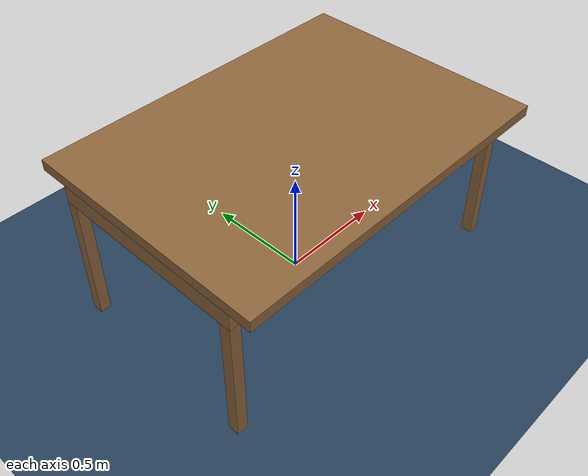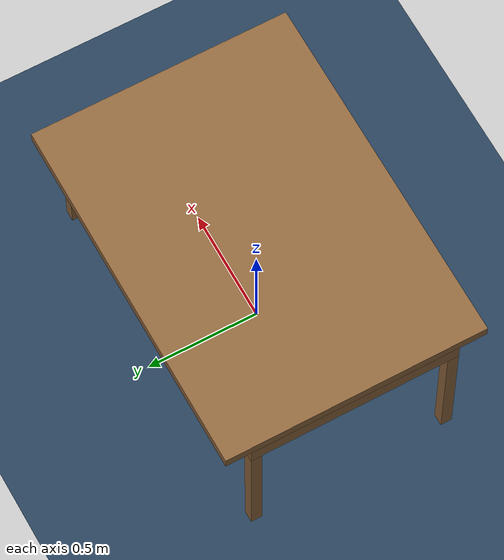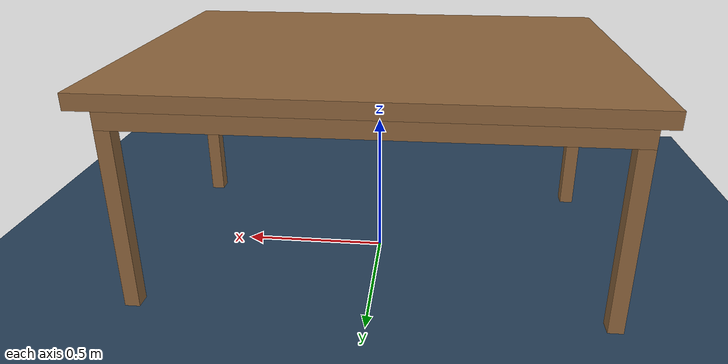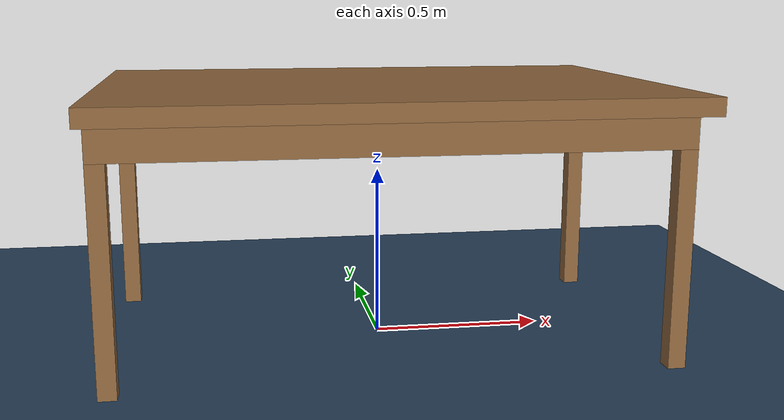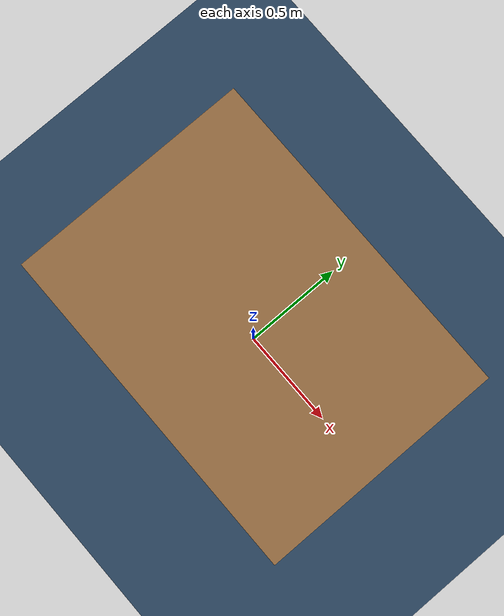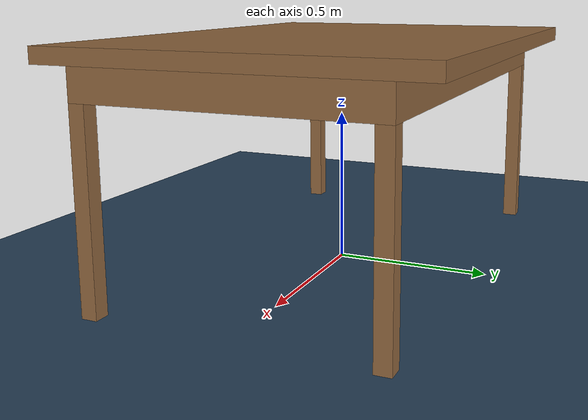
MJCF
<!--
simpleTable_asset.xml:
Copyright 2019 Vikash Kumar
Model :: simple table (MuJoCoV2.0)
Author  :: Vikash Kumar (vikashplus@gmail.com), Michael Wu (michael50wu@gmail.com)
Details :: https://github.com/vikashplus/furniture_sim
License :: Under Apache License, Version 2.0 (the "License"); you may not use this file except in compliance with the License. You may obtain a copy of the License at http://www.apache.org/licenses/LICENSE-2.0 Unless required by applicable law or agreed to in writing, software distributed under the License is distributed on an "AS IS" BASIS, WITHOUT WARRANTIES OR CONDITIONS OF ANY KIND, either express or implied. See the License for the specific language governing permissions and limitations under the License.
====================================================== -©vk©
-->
<mujoco model="cube in bin scene">
   <compiler angle="radian" autolimits="true"/>

   <option iterations="3" ls_iterations="5" solver="Newton" tolerance="1e-8" timestep="0.001">
     <flag eulerdamp="disable"/>
   </option>

  <!-- Assets -->
  <include file="simpleTable/simpleTable_asset.xml"/>

  <!-- Scene -->
  <include file="scene.xml"/>

  <!-- Scene Objects -->
  <worldbody>
    <camera name="fixed" pos="0 0 2" quat="1 0 0 0" fovy="45"/>

    <!-- Table -->
    <include file="simpleTable/simpleWoodTable_body.xml"/>

  </worldbody>

</mujoco>

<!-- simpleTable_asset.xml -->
<mujocoinclude>

    <asset>
        <texture name="T_simpleWoodTable" type="cube" height="1" width="1" file="wood1.png" />
        <material name="M_simpleWoodTable" texture="T_simpleWoodTable" rgba="0.8 0.8 0.8 1" shininess="0.2" reflectance="0.3" texuniform="false" />
    </asset>

    <default>

        <default class="viz_simpleWoodTable" >
            <geom group="1" contype="0" conaffinity="0" type="mesh" material="M_simpleWoodTable"/>
        </default>

        <default class="body_simpleTable" >
            <geom contype="1" conaffinity="1" group="4" rgba=".4 .5 .6 1" />
            <joint limited="true" damping="1" frictionloss="0.5" armature=".01" />
        </default>

   </default>

</mujocoinclude>

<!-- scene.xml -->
<mujoco model="scene">

  <visual>
    <headlight diffuse="0.6 0.6 0.6" ambient="0.3 0.3 0.3" specular="0 0 0"/>
    <rgba haze="0.15 0.25 0.35 1"/>
    <global azimuth="120" elevation="-20"/>
    <scale contactwidth="0.075" contactheight="0.025" forcewidth="0.05" com="0.05" framewidth="0.01" framelength="0.2"/>
  </visual>

  <asset>
    <texture type="skybox" builtin="gradient" rgb1="0.3 0.5 0.7" rgb2="0 0 0" width="512" height="3072"/>
    <texture type="2d" name="groundplane" builtin="checker" mark="edge" rgb1="0.2 0.3 0.4" rgb2="0.1 0.2 0.3"
      markrgb="0.8 0.8 0.8" width="300" height="300"/>
    <material name="groundplane" texture="groundplane" texuniform="true" texrepeat="5 5" reflectance="0.2"/>
  </asset>

  <worldbody>
    <light pos="0 0 1.5" dir="0 0 -1" directional="true"/>
    <geom name="floor" size="0 0 0.05" type="plane" material="groundplane" contype="1"/>
  </worldbody>
</mujoco>

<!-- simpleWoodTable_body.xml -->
<mujocoinclude>

    <!-- simpleWoodTable -©vk©-->
    <body name="simpleWoodTable" pos="0 0 0"  childclass="body_simpleTable" >

        <!-- Visual geoms (for rendering) -->
        <geom class="viz_simpleWoodTable" type="box" size=".8 .575 .025" pos="0 0 0.735"/>
        <geom class="viz_simpleWoodTable" type="box" size="0.79 0.46 .05" pos="0 0 0.66"/>
        <geom class="viz_simpleWoodTable" type="box" size="0.025 0.025 0.305" pos="-0.765 0.435 0.305"/>
        <geom class="viz_simpleWoodTable" type="box" size="0.025 0.025 0.305" pos="-0.765 -0.435 0.305"/>
        <geom class="viz_simpleWoodTable" type="box" size="0.025 0.025 0.305" pos="0.765 0.435 0.305"/>
        <geom class="viz_simpleWoodTable" type="box" size="0.025 0.025 0.305" pos="0.765 -0.435 0.305"/>

        <!-- Collision geoms (for physics) -->
        <geom type="box" size=".8 .575 .025" pos="0 0 0.735" mass="40" />
        <geom type="box" size="0.79 0.46 .05" pos="0 0 0.66"/>
        <geom type="box" size="0.025 0.025 0.305" pos="-0.765 0.435 0.305"/>
        <geom type="box" size="0.025 0.025 0.305" pos="-0.765 -0.435 0.305"/>
        <geom type="box" size="0.025 0.025 0.305" pos="0.765 0.435 0.305"/>
        <geom type="box" size="0.025 0.025 0.305" pos="0.765 -0.435 0.305"/>
    </body>

</mujocoinclude>
